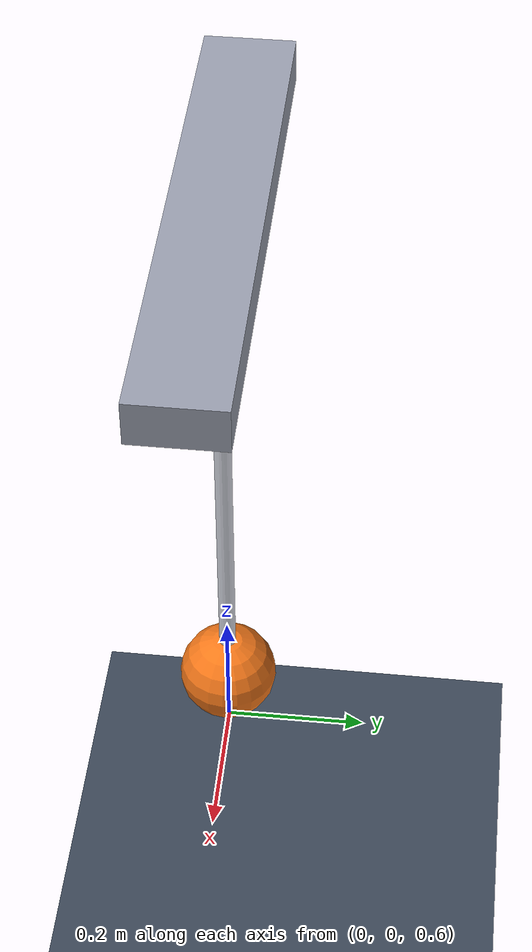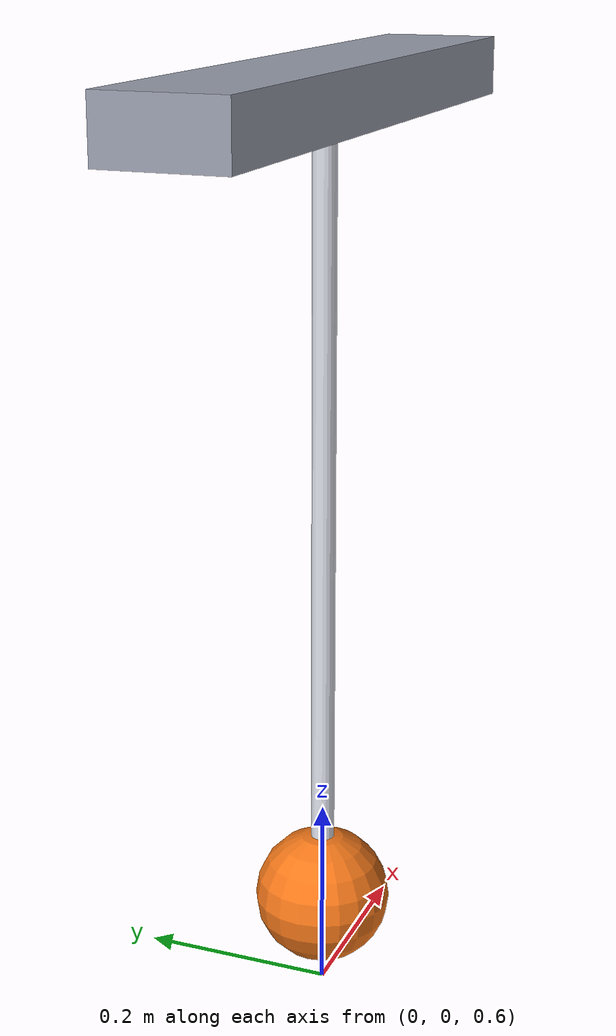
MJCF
<mujoco model="pendulo">
  <compiler angle="degree"/>
  <option timestep="0.002" integrator="implicitfast"/>

  <visual>
    <global offwidth="1280" offheight="720"/>
    <quality shadowsize="2048"/>
    <headlight ambient="0.4 0.4 0.4" diffuse="0.6 0.6 0.6" specular="0.05 0.05 0.05"/>
  </visual>
  <statistic center="0 0 1.0" extent="1.6"/>

  <asset>
    <texture type="skybox" builtin="gradient" rgb1="0.50 0.72 0.95" rgb2="0.03 0.05 0.10" width="512" height="3072"/>
    <texture name="grade" type="2d" builtin="checker" rgb1="0.19 0.23 0.29" rgb2="0.27 0.32 0.39" width="512" height="512" mark="edge" markrgb="0.55 0.60 0.66"/>
    <material name="piso" texture="grade" texrepeat="5 5" texuniform="true" reflectance="0.1"/>
  </asset>

  <worldbody>
    <light name="sol" pos="1 -2 4" dir="-0.2 0.5 -1" type="directional" diffuse="0.85 0.85 0.85"/>
    <camera name="frontal" pos="0 -3.0 1.0" xyaxes="1 0 0 0 0.03 1"/>
    <geom name="chao" type="plane" size="4 4 0.05" material="piso"/>
    <!-- suporte visual (sem colisão) -->
    <geom name="suporte" type="box" size="0.35 0.06 0.03" pos="0 0 1.53" rgba="0.6 0.62 0.68 1" contype="0" conaffinity="0"/>
    <body name="haste" pos="0 0 1.5">
      <joint name="pivo" type="hinge" axis="0 1 0" damping="0"/>
      <geom name="barra"  type="capsule" fromto="0 0 0 0 0 -0.80" size="0.012" density="500"  rgba="0.85 0.86 0.9 1"/>
      <geom name="massa"  type="sphere"  pos="0 0 -0.80"           size="0.07"  density="2000" rgba="0.96 0.47 0.10 1"/>
      <site name="ponta" pos="0 0 -0.80" size="0.015" rgba="1 0.1 0.1 1"/>
    </body>
  </worldbody>

  <sensor>
    <jointpos name="theta"  joint="pivo"/>
    <jointvel name="omega"  joint="pivo"/>
  </sensor>
</mujoco>
